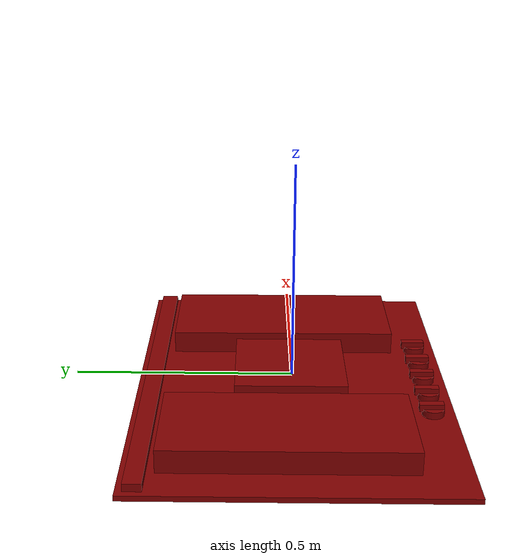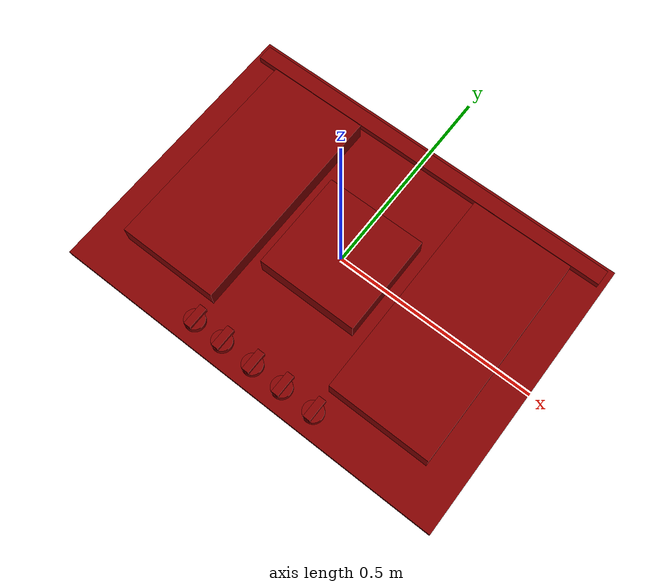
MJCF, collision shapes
<mujoco model="model">
  <asset>
    <texture file="visuals/material_0.png" name="tex-model" type="2d"/>
    <texture type="2d" name="image16" file="visuals/image16.png"/>
    <texture type="2d" name="image19" file="visuals/image19.png"/>
    <material name="model" reflectance="0.5" texrepeat="1 1" texture="tex-model" texuniform="false"/>
    <material name="TX_Stove_3_1.004" texture="image16" specular="0.5" shininess="0.25"/>
    <material name="TX_Stove_3_2.004" texture="image19" specular="0.5" shininess="0.25"/>
    <mesh file="visuals/model_0.obj" name="model_0_vis" scale="1 1 1"/>
    <mesh file="visuals/model_1.obj" name="model_1_vis" scale="1 1 1"/>
    <mesh file="visuals/knob_rear_right_0.obj" name="knob_rear_right_0_vis" scale="1 1 1"/>
    <mesh file="visuals/knob_front_left_0.obj" name="knob_front_left_0_vis" scale="1 1 1"/>
    <mesh file="visuals/knob_front_right_0.obj" name="knob_front_right_0_vis" scale="1 1 1"/>
    <mesh file="visuals/knob_rear_left_0.obj" name="knob_rear_left_0_vis" scale="1 1 1"/>
    <mesh file="visuals/knob_center_0.obj" name="knob_center_0_vis" scale="1 1 1"/>
  </asset>
  <default>
    <default class="visual">
      <geom conaffinity="0" contype="0" group="1" type="mesh"/>
    </default>
    <default class="collision">
      <geom group="0" rgba="0.5 0 0 0.5"/>
    </default>
    <default class="region">
      <geom group="1" conaffinity="0" contype="0" rgba="0 1 0 0"/>
    </default>
  </default>
  <worldbody>
    <body>
      <body name="object">
        <geom solimp="0.998 0.998 0.001" solref="0.001 1" density="100" friction="0.95 0.3 0.1" type="mesh" mesh="model_0_vis" material="TX_Stove_3_2.004" class="visual"/>
        <geom solimp="0.998 0.998 0.001" solref="0.001 1" density="100" friction="0.95 0.3 0.1" type="mesh" mesh="model_1_vis" material="TX_Stove_3_1.004" class="visual"/>
        <!-- Burners -->
        <site name="burner_on_front_left" pos="-0.289 -0.12 0.005" size="0.06 0.007" rgba="0.3 0.4 1 0.5" type="cylinder"/>
        <site name="burner_on_front_right" pos="0.2875 -0.12 0.005" size="0.06 0.007" rgba="0.3 0.4 1 0.5" type="cylinder"/>
        <site name="burner_on_rear_left" pos="-0.289 0.158 0.005" size="0.07 0.007" rgba="0.3 0.4 1 0.5" type="cylinder"/>
        <site name="burner_on_rear_right" pos="0.2875 0.158 0.005" size="0.07 0.007" rgba="0.3 0.4 1 0.5" type="cylinder"/>
        <site name="burner_on_center" pos="-0.002 0.005 0.005" size="0.07 0.007" rgba="0.3 0.4 1 0.5" type="cylinder"/>
        <site name="burner_front_left_place_site" pos="-0.289 -0.12 0.032" size="0.06 0.001" rgba="0.3 0.4 1 0" type="cylinder"/>
        <site name="burner_front_right_place_site" pos="0.2875 -0.12 0.032" size="0.06 0.001" rgba="0.3 0.4 1 0" type="cylinder"/>
        <site name="burner_rear_left_place_site" pos="-0.289 0.158 0.032" size="0.07 0.001" rgba="0.3 0.4 1 0" type="cylinder"/>
        <site name="burner_rear_right_place_site" pos="0.2875 0.158 0.032" size="0.07 0.001" rgba="0.3 0.4 1 0" type="cylinder"/>
        <site name="burner_center_place_site" pos="-0.002 0.005 0.032" size="0.07 0.001" rgba="0.3 0.4 1 0" type="cylinder"/>
        <!-- Main -->
        <geom class="collision" type="box" pos="-0.289 0.0175 0" size="0.127 0.266 0.032"/>
        <geom class="collision" type="box" pos="0.2875 0.0175 0" size="0.127 0.266 0.032"/>
        <geom class="collision" type="box" pos="-0.002 0.005 0" size="0.127 0.126 0.032"/>
        <geom class="collision" type="box" pos="0 0.3205 -0.0105" size="0.485 0.0195 0.0088"/>
        <geom class="collision" type="box" pos="0 0 -0.025" size="0.5 0.355 0.006"/>
        <body name="knob_rear_right">
          <joint name="knob_rear_right_joint" type="hinge" pos="-0.087 -0.305 -0.01" damping="1" armature="2"/>
          <geom solimp="0.998 0.998 0.001" solref="0.001 1" density="100" friction="0.95 0.3 0.1" type="mesh" mesh="knob_rear_right_0_vis" material="TX_Stove_3_2.004" class="visual"/>
          <geom class="collision" type="cylinder" pos="-0.087 -0.305 -0.008" size="0.0245 0.008 0"/>
          <geom class="collision" type="box" pos="-0.087 -0.3005 0.0035" size="0.009 0.027 0.008" name="knob_rear_right_main"/>
        </body>
        <body name="knob_front_left">
          <joint name="knob_front_left_joint" type="hinge" pos="0.0785 -0.305 -0.01" damping="1" armature="2"/>
          <geom solimp="0.998 0.998 0.001" solref="0.001 1" density="100" friction="0.95 0.3 0.1" type="mesh" mesh="knob_front_left_0_vis" material="TX_Stove_3_2.004" class="visual"/>
          <geom class="collision" type="cylinder" pos="0.0785 -0.305 -0.008" size="0.0245 0.008 0"/>
          <geom class="collision" type="box" pos="0.0785 -0.3005 0.0035" size="0.009 0.027 0.008" name="knob_front_left_main"/>
        </body>
        <body name="knob_front_right">
          <joint name="knob_front_right_joint" type="hinge" pos="0.1635 -0.305 -0.01" damping="1" armature="2"/>
          <geom solimp="0.998 0.998 0.001" solref="0.001 1" density="100" friction="0.95 0.3 0.1" type="mesh" mesh="knob_front_right_0_vis" material="TX_Stove_3_2.004" class="visual"/>
          <geom class="collision" type="cylinder" pos="0.1635 -0.305 -0.008" size="0.0245 0.008 0"/>
          <geom class="collision" type="box" pos="0.1635 -0.3005 0.0035" size="0.009 0.027 0.008" name="knob_front_right_main"/>
        </body>
        <body name="knob_rear_left">
          <joint name="knob_rear_left_joint" type="hinge" pos="-0.165 -0.305 -0.01" damping="1" armature="2"/>
          <geom solimp="0.998 0.998 0.001" solref="0.001 1" density="100" friction="0.95 0.3 0.1" type="mesh" mesh="knob_rear_left_0_vis" material="TX_Stove_3_2.004" class="visual"/>
          <geom class="collision" type="cylinder" pos="-0.165 -0.305 -0.008" size="0.0245 0.008 0"/>
          <geom class="collision" type="box" pos="-0.165 -0.3005 0.0035" size="0.009 0.027 0.008" name="knob_rear_left_main"/>
        </body>
        <body name="knob_center">
          <joint name="knob_center_joint" type="hinge" pos="-0.002 -0.305 -0.01" damping="1" armature="2"/>
          <geom solimp="0.998 0.998 0.001" solref="0.001 1" density="100" friction="0.95 0.3 0.1" type="mesh" mesh="knob_center_0_vis" material="TX_Stove_3_2.004" class="visual"/>
          <geom class="collision" type="cylinder" pos="-0.002 -0.305 -0.008" size="0.0245 0.008 0"/>
          <geom class="collision" type="box" pos="-0.002 -0.3005 0.0035" size="0.009 0.027 0.008" name="knob_center_main"/>
        </body>
        <!-- exterior bounding box points -->
        <geom class="region" name="reg_main" type="box" pos="0.0 0.0 -0.025" size="0.5 0.354 0.006"/>
      </body>
    </body>
  </worldbody>
</mujoco>
